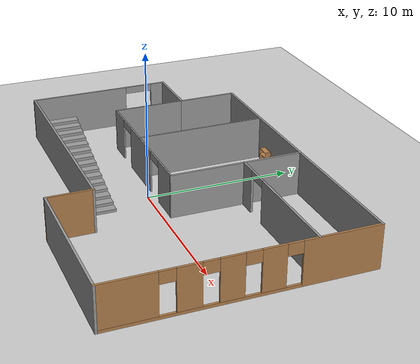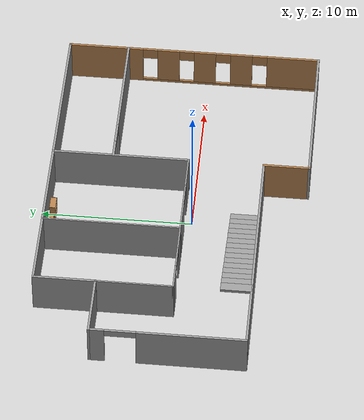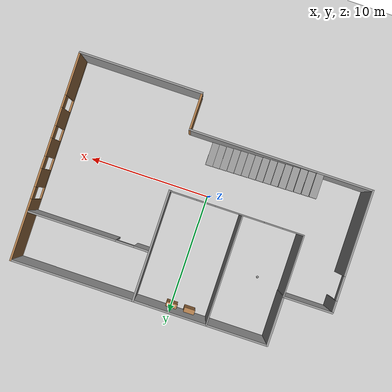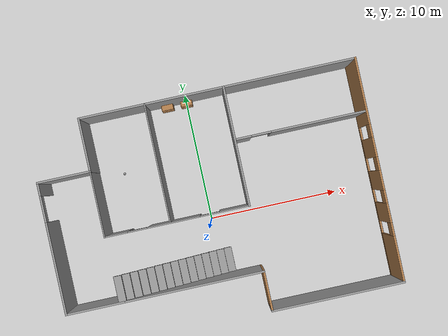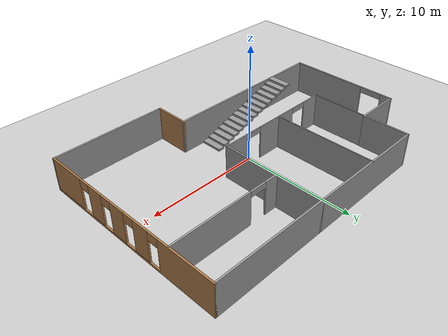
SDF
<sdf version="1.6">
 <world name="default">
  <light name="sun" type="directional">
   <pose>0 0 10 0 -0 0</pose>
   <diffuse>0.8 0.8 0.8 1</diffuse>
   <specular>0.2 0.2 0.2 1</specular>
   <attenuation>
    <range>1000</range>
    <constant>0.9</constant>
    <linear>0.01</linear>
    <quadratic>0.001</quadratic>
   </attenuation>
   <direction>-0.5 0.1 -0.9</direction>
  </light>
  <model name="ground_plane">
   <static>1</static>
   <link name="link">
    <collision name="collision">
     <geometry><plane><normal>0 0 1</normal><size>100 100</size></plane></geometry>
     <surface>
      <contact><collide_bitmask>65535</collide_bitmask></contact>
      <friction><ode><mu>100</mu><mu2>50</mu2></ode></friction>
     </surface>
    </collision>
    <visual name="visual">
     <cast_shadows>0</cast_shadows>
     <geometry><plane><normal>0 0 1</normal><size>100 100</size></plane></geometry>
     <material>
      <script><uri>file://media/materials/scripts/gazebo.material</uri><name>Gazebo/Grey</name></script>
     </material>
    </visual>
   </link>
  </model>
  <gravity>0 0 -9.8</gravity>
  <magnetic_field>6e-06 2.3e-05 -4.2e-05</magnetic_field>
  <atmosphere type="adiabatic"/>
  <physics name="default_physics" default="0" type="ode">
   <max_step_size>0.001</max_step_size>
   <real_time_factor>1</real_time_factor>
   <real_time_update_rate>1000</real_time_update_rate>
  </physics>
  <scene><ambient>0.4 0.4 0.4 1</ambient><background>0.7 0.7 0.7 1</background><shadows>1</shadows></scene>
  <audio><device>default</device></audio>
  <spherical_coordinates>
   <surface_model>EARTH_WGS84</surface_model>
   <latitude_deg>0</latitude_deg>
   <longitude_deg>0</longitude_deg>
   <elevation>0</elevation>
   <heading_deg>0</heading_deg>
  </spherical_coordinates>
  <model name="bookshelf">
   <static>1</static>
   <link name="link">
    <inertial><mass>1</mass></inertial>
    <collision name="back">
     <pose>0 0.005 0.6 0 -0 0</pose>
     <geometry><box><size>0.9 0.01 1.2</size></box></geometry>
    </collision>
    <visual name="visual1">
     <pose>0 0.005 0.6 0 -0 0</pose>
     <geometry><box><size>0.9 0.01 1.2</size></box></geometry>
     <material>
      <script><uri>file://media/materials/scripts/gazebo.material</uri><name>Gazebo/Wood</name></script>
     </material>
    </visual>
    <collision name="left_side">
     <pose>0.45 -0.195 0.6 0 -0 0</pose>
     <geometry><box><size>0.02 0.4 1.2</size></box></geometry>
    </collision>
    <visual name="visual2">
     <pose>0.45 -0.195 0.6 0 -0 0</pose>
     <geometry><box><size>0.02 0.4 1.2</size></box></geometry>
     <material>
      <script><uri>file://media/materials/scripts/gazebo.material</uri><name>Gazebo/Wood</name></script>
     </material>
    </visual>
    <collision name="right_side">
     <pose>-0.45 -0.195 0.6 0 -0 0</pose>
     <geometry><box><size>0.02 0.4 1.2</size></box></geometry>
    </collision>
    <visual name="visual3">
     <pose>-0.45 -0.195 0.6 0 -0 0</pose>
     <geometry><box><size>0.02 0.4 1.2</size></box></geometry>
     <material>
      <script><uri>file://media/materials/scripts/gazebo.material</uri><name>Gazebo/Wood</name></script>
     </material>
    </visual>
    <collision name="bottom">
     <pose>0 -0.195 0.03 0 -0 0</pose>
     <geometry><box><size>0.88 0.4 0.06</size></box></geometry>
    </collision>
    <visual name="visual4">
     <pose>0 -0.195 0.03 0 -0 0</pose>
     <geometry><box><size>0.88 0.4 0.06</size></box></geometry>
     <material>
      <script><uri>file://media/materials/scripts/gazebo.material</uri><name>Gazebo/Wood</name></script>
     </material>
    </visual>
    <collision name="top">
     <pose>0 -0.195 1.19 0 -0 0</pose>
     <geometry><box><size>0.88 0.4 0.02</size></box></geometry>
    </collision>
    <visual name="visual5">
     <pose>0 -0.195 1.19 0 -0 0</pose>
     <geometry><box><size>0.88 0.4 0.02</size></box></geometry>
     <material>
      <script><uri>file://media/materials/scripts/gazebo.material</uri><name>Gazebo/Wood</name></script>
     </material>
    </visual>
    <collision name="low_shelf">
     <pose>0 -0.195 0.43 0 -0 0</pose>
     <geometry><box><size>0.88 0.4 0.02</size></box></geometry>
    </collision>
    <visual name="visual6">
     <pose>0 -0.195 0.43 0 -0 0</pose>
     <geometry><box><size>0.88 0.4 0.02</size></box></geometry>
     <material>
      <script><uri>file://media/materials/scripts/gazebo.material</uri><name>Gazebo/Wood</name></script>
     </material>
    </visual>
    <collision name="high_shelf">
     <pose>0 -0.195 0.8 0 -0 0</pose>
     <geometry><box><size>0.88 0.4 0.02</size></box></geometry>
    </collision>
    <visual name="visual7">
     <pose>0 -0.195 0.8 0 -0 0</pose>
     <geometry><box><size>0.88 0.4 0.02</size></box></geometry>
     <material>
      <script><uri>file://media/materials/scripts/gazebo.material</uri><name>Gazebo/Wood</name></script>
     </material>
    </visual>
   </link>
   <pose>-1.5 9.4 0 0 -0 0</pose>
  </model>
  <model name="my_building">
   <pose>0.5 1 0 0 -0 0</pose>
   <link name="Stairs_0">
    <visual name="Stairs_0_Visual_0">
     <pose>0.2 -4.5 0.1 0 -0 -1.5708</pose>
     <geometry><box><size>2 0.6 0.2</size></box></geometry>
     <material>
      <script><uri>file://media/materials/scripts/gazebo.material</uri><name>Gazebo/Grey</name></script>
      <ambient>1 1 1 1</ambient>
     </material>
     <meta><layer>0</layer></meta>
    </visual>
    <collision name="Stairs_0_Collision_0">
     <geometry><box><size>2 0.6 0.2</size></box></geometry>
     <pose>0.2 -4.5 0.1 0 -0 -1.5708</pose>
    </collision>
    <visual name="Stairs_0_Visual_1">
     <pose>-0.399999 -4.5 0.3 0 -0 -1.5708</pose>
     <geometry><box><size>2 0.6 0.2</size></box></geometry>
     <material>
      <script><uri>file://media/materials/scripts/gazebo.material</uri><name>Gazebo/Grey</name></script>
      <ambient>1 1 1 1</ambient>
     </material>
     <meta><layer>0</layer></meta>
    </visual>
    <collision name="Stairs_0_Collision_1">
     <geometry><box><size>2 0.6 0.2</size></box></geometry>
     <pose>-0.399999 -4.5 0.3 0 -0 -1.5708</pose>
    </collision>
    <visual name="Stairs_0_Visual_2">
     <pose>-1 -4.5 0.5 0 -0 -1.5708</pose>
     <geometry><box><size>2 0.6 0.2</size></box></geometry>
     <material>
      <script><uri>file://media/materials/scripts/gazebo.material</uri><name>Gazebo/Grey</name></script>
      <ambient>1 1 1 1</ambient>
     </material>
     <meta><layer>0</layer></meta>
    </visual>
    <collision name="Stairs_0_Collision_2">
     <geometry><box><size>2 0.6 0.2</size></box></geometry>
     <pose>-1 -4.5 0.5 0 -0 -1.5708</pose>
    </collision>
    <visual name="Stairs_0_Visual_3">
     <pose>-1.6 -4.5 0.7 0 -0 -1.5708</pose>
     <geometry><box><size>2 0.6 0.2</size></box></geometry>
     <material>
      <script><uri>file://media/materials/scripts/gazebo.material</uri><name>Gazebo/Grey</name></script>
      <ambient>1 1 1 1</ambient>
     </material>
     <meta><layer>0</layer></meta>
    </visual>
    <collision name="Stairs_0_Collision_3">
     <geometry><box><size>2 0.6 0.2</size></box></geometry>
     <pose>-1.6 -4.5 0.7 0 -0 -1.5708</pose>
    </collision>
    <visual name="Stairs_0_Visual_4">
     <pose>-2.2 -4.5 0.9 0 -0 -1.5708</pose>
     <geometry><box><size>2 0.6 0.2</size></box></geometry>
     <material>
      <script><uri>file://media/materials/scripts/gazebo.material</uri><name>Gazebo/Grey</name></script>
      <ambient>1 1 1 1</ambient>
     </material>
     <meta><layer>0</layer></meta>
    </visual>
    <collision name="Stairs_0_Collision_4">
     <geometry><box><size>2 0.6 0.2</size></box></geometry>
     <pose>-2.2 -4.5 0.9 0 -0 -1.5708</pose>
    </collision>
    <visual name="Stairs_0_Visual_5">
     <pose>-2.8 -4.5 1.1 0 -0 -1.5708</pose>
     <geometry><box><size>2 0.6 0.2</size></box></geometry>
     <material>
      <script><uri>file://media/materials/scripts/gazebo.material</uri><name>Gazebo/Grey</name></script>
      <ambient>1 1 1 1</ambient>
     </material>
     <meta><layer>0</layer></meta>
    </visual>
    <collision name="Stairs_0_Collision_5">
     <geometry><box><size>2 0.6 0.2</size></box></geometry>
     <pose>-2.8 -4.5 1.1 0 -0 -1.5708</pose>
    </collision>
    <visual name="Stairs_0_Visual_6">
     <pose>-3.4 -4.5 1.3 0 -0 -1.5708</pose>
     <geometry><box><size>2 0.6 0.2</size></box></geometry>
     <material>
      <script><uri>file://media/materials/scripts/gazebo.material</uri><name>Gazebo/Grey</name></script>
      <ambient>1 1 1 1</ambient>
     </material>
     <meta><layer>0</layer></meta>
    </visual>
    <collision name="Stairs_0_Collision_6">
     <geometry><box><size>2 0.6 0.2</size></box></geometry>
     <pose>-3.4 -4.5 1.3 0 -0 -1.5708</pose>
    </collision>
    <visual name="Stairs_0_Visual_7">
     <pose>-4 -4.5 1.5 0 -0 -1.5708</pose>
     <geometry><box><size>2 0.6 0.2</size></box></geometry>
     <material>
      <script><uri>file://media/materials/scripts/gazebo.material</uri><name>Gazebo/Grey</name></script>
      <ambient>1 1 1 1</ambient>
     </material>
     <meta><layer>0</layer></meta>
    </visual>
    <collision name="Stairs_0_Collision_7">
     <geometry><box><size>2 0.6 0.2</size></box></geometry>
     <pose>-4 -4.5 1.5 0 -0 -1.5708</pose>
    </collision>
    <visual name="Stairs_0_Visual_8">
     <pose>-4.6 -4.5 1.7 0 -0 -1.5708</pose>
     <geometry><box><size>2 0.6 0.2</size></box></geometry>
     <material>
      <script><uri>file://media/materials/scripts/gazebo.material</uri><name>Gazebo/Grey</name></script>
      <ambient>1 1 1 1</ambient>
     </material>
     <meta><layer>0</layer></meta>
    </visual>
    <collision name="Stairs_0_Collision_8">
     <geometry><box><size>2 0.6 0.2</size></box></geometry>
     <pose>-4.6 -4.5 1.7 0 -0 -1.5708</pose>
    </collision>
    <visual name="Stairs_0_Visual_9">
     <pose>-5.2 -4.5 1.9 0 -0 -1.5708</pose>
     <geometry><box><size>2 0.6 0.2</size></box></geometry>
     <material>
      <script><uri>file://media/materials/scripts/gazebo.material</uri><name>Gazebo/Grey</name></script>
      <ambient>1 1 1 1</ambient>
     </material>
     <meta><layer>0</layer></meta>
    </visual>
    <collision name="Stairs_0_Collision_9">
     <geometry><box><size>2 0.6 0.2</size></box></geometry>
     <pose>-5.2 -4.5 1.9 0 -0 -1.5708</pose>
    </collision>
    <visual name="Stairs_0_Visual_10">
     <pose>-5.8 -4.5 2.1 0 -0 -1.5708</pose>
     <geometry><box><size>2 0.6 0.2</size></box></geometry>
     <material>
      <script><uri>file://media/materials/scripts/gazebo.material</uri><name>Gazebo/Grey</name></script>
      <ambient>1 1 1 1</ambient>
     </material>
     <meta><layer>0</layer></meta>
    </visual>
    <collision name="Stairs_0_Collision_10">
     <geometry><box><size>2 0.6 0.2</size></box></geometry>
     <pose>-5.8 -4.5 2.1 0 -0 -1.5708</pose>
    </collision>
    <visual name="Stairs_0_Visual_11">
     <pose>-6.4 -4.5 2.3 0 -0 -1.5708</pose>
     <geometry><box><size>2 0.6 0.2</size></box></geometry>
     <material>
      <script><uri>file://media/materials/scripts/gazebo.material</uri><name>Gazebo/Grey</name></script>
      <ambient>1 1 1 1</ambient>
     </material>
     <meta><layer>0</layer></meta>
    </visual>
    <collision name="Stairs_0_Collision_11">
     <geometry><box><size>2 0.6 0.2</size></box></geometry>
     <pose>-6.4 -4.5 2.3 0 -0 -1.5708</pose>
    </collision>
    <visual name="Stairs_0_Visual_12">
     <pose>-7 -4.5 2.5 0 -0 -1.5708</pose>
     <geometry><box><size>2 0.6 0.2</size></box></geometry>
     <material>
      <script><uri>file://media/materials/scripts/gazebo.material</uri><name>Gazebo/Grey</name></script>
      <ambient>1 1 1 1</ambient>
     </material>
     <meta><layer>0</layer></meta>
    </visual>
    <collision name="Stairs_0_Collision_12">
     <geometry><box><size>2 0.6 0.2</size></box></geometry>
     <pose>-7 -4.5 2.5 0 -0 -1.5708</pose>
    </collision>
    <visual name="Stairs_0_Visual_13">
     <pose>-7.6 -4.5 2.7 0 -0 -1.5708</pose>
     <geometry><box><size>2 0.6 0.2</size></box></geometry>
     <material>
      <script><uri>file://media/materials/scripts/gazebo.material</uri><name>Gazebo/Grey</name></script>
      <ambient>1 1 1 1</ambient>
     </material>
     <meta><layer>0</layer></meta>
    </visual>
    <collision name="Stairs_0_Collision_13">
     <geometry><box><size>2 0.6 0.2</size></box></geometry>
     <pose>-7.6 -4.5 2.7 0 -0 -1.5708</pose>
    </collision>
    <visual name="Stairs_0_Visual_14">
     <pose>-8.2 -4.5 2.9 0 -0 -1.5708</pose>
     <geometry><box><size>2 0.6 0.2</size></box></geometry>
     <material>
      <script><uri>file://media/materials/scripts/gazebo.material</uri><name>Gazebo/Grey</name></script>
      <ambient>1 1 1 1</ambient>
     </material>
     <meta><layer>0</layer></meta>
    </visual>
    <collision name="Stairs_0_Collision_14">
     <geometry><box><size>2 0.6 0.2</size></box></geometry>
     <pose>-8.2 -4.5 2.9 0 -0 -1.5708</pose>
    </collision>
   </link>
   <link name="Wall_0">
    <pose>-12.5 -0.5 0 0 -0 -1.5708</pose>
    <visual name="Wall_0_Visual_0">
     <pose>-4.5375 0 1.5 0 -0 0</pose>
     <geometry><box><size>1.075 0.15 3</size></box></geometry>
     <material>
      <script><uri>file://media/materials/scripts/gazebo.material</uri><name>Gazebo/Grey</name></script>
      <ambient>1 1 1 1</ambient>
     </material>
     <meta><layer>0</layer></meta>
    </visual>
    <collision name="Wall_0_Collision_0">
     <geometry><box><size>1.075 0.15 3</size></box></geometry>
     <pose>-4.5375 0 1.5 0 -0 0</pose>
    </collision>
    <visual name="Wall_0_Visual_1">
     <pose>1.5375 0 1.5 0 -0 0</pose>
     <geometry><box><size>7.075 0.15 3</size></box></geometry>
     <material>
      <script><uri>file://media/materials/scripts/gazebo.material</uri><name>Gazebo/Grey</name></script>
      <ambient>1 1 1 1</ambient>
     </material>
     <meta><layer>0</layer></meta>
    </visual>
    <collision name="Wall_0_Collision_1">
     <geometry><box><size>7.075 0.15 3</size></box></geometry>
     <pose>1.5375 0 1.5 0 -0 0</pose>
    </collision>
    <visual name="Wall_0_Visual_2">
     <pose>-3 0 2.75 0 -0 0</pose>
     <geometry><box><size>2 0.15 0.5</size></box></geometry>
     <material>
      <script><uri>file://media/materials/scripts/gazebo.material</uri><name>Gazebo/Grey</name></script>
      <ambient>1 1 1 1</ambient>
     </material>
     <meta><layer>0</layer></meta>
    </visual>
    <collision name="Wall_0_Collision_2">
     <geometry><box><size>2 0.15 0.5</size></box></geometry>
     <pose>-3 0 2.75 0 -0 0</pose>
    </collision>
   </link>
   <link name="Wall_11">
    <pose>12.5 0 0 0 -0 -1.5708</pose>
    <visual name="Wall_11_Visual_0">
     <pose>-6.0375 0 1.5 0 -0 0</pose>
     <geometry><box><size>5.075 0.15 3</size></box></geometry>
     <material>
      <script><uri>file://media/materials/scripts/gazebo.material</uri><name>Gazebo/Wood</name></script>
      <ambient>1 1 1 1</ambient>
     </material>
     <meta><layer>0</layer></meta>
    </visual>
    <collision name="Wall_11_Collision_0">
     <geometry><box><size>5.075 0.15 3</size></box></geometry>
     <pose>-6.0375 0 1.5 0 -0 0</pose>
    </collision>
    <visual name="Wall_11_Visual_1">
     <pose>2.5375 0 0.1 0 -0 0</pose>
     <geometry><box><size>12.075 0.15 0.2</size></box></geometry>
     <material>
      <script><uri>file://media/materials/scripts/gazebo.material</uri><name>Gazebo/Wood</name></script>
      <ambient>1 1 1 1</ambient>
     </material>
     <meta><layer>0</layer></meta>
    </visual>
    <collision name="Wall_11_Collision_1">
     <geometry><box><size>12.075 0.15 0.2</size></box></geometry>
     <pose>2.5375 0 0.1 0 -0 0</pose>
    </collision>
    <visual name="Wall_11_Visual_2">
     <pose>-1.75 0 1.6 0 -0 0</pose>
     <geometry><box><size>1.5 0.15 2.8</size></box></geometry>
     <material>
      <script><uri>file://media/materials/scripts/gazebo.material</uri><name>Gazebo/Wood</name></script>
      <ambient>1 1 1 1</ambient>
     </material>
     <meta><layer>0</layer></meta>
    </visual>
    <collision name="Wall_11_Collision_2">
     <geometry><box><size>1.5 0.15 2.8</size></box></geometry>
     <pose>-1.75 0 1.6 0 -0 0</pose>
    </collision>
    <visual name="Wall_11_Visual_3">
     <pose>0.75 0 1.6 0 -0 0</pose>
     <geometry><box><size>1.5 0.15 2.8</size></box></geometry>
     <material>
      <script><uri>file://media/materials/scripts/gazebo.material</uri><name>Gazebo/Wood</name></script>
      <ambient>1 1 1 1</ambient>
     </material>
     <meta><layer>0</layer></meta>
    </visual>
    <collision name="Wall_11_Collision_3">
     <geometry><box><size>1.5 0.15 2.8</size></box></geometry>
     <pose>0.75 0 1.6 0 -0 0</pose>
    </collision>
    <visual name="Wall_11_Visual_4">
     <pose>3.25 0 1.6 0 -0 0</pose>
     <geometry><box><size>1.5 0.15 2.8</size></box></geometry>
     <material>
      <script><uri>file://media/materials/scripts/gazebo.material</uri><name>Gazebo/Wood</name></script>
      <ambient>1 1 1 1</ambient>
     </material>
     <meta><layer>0</layer></meta>
    </visual>
    <collision name="Wall_11_Collision_4">
     <geometry><box><size>1.5 0.15 2.8</size></box></geometry>
     <pose>3.25 0 1.6 0 -0 0</pose>
    </collision>
    <visual name="Wall_11_Visual_5">
     <pose>6.7875 0 1.6 0 -0 0</pose>
     <geometry><box><size>3.575 0.15 2.8</size></box></geometry>
     <material>
      <script><uri>file://media/materials/scripts/gazebo.material</uri><name>Gazebo/Wood</name></script>
      <ambient>1 1 1 1</ambient>
     </material>
     <meta><layer>0</layer></meta>
    </visual>
    <collision name="Wall_11_Collision_5">
     <geometry><box><size>3.575 0.15 2.8</size></box></geometry>
     <pose>6.7875 0 1.6 0 -0 0</pose>
    </collision>
    <visual name="Wall_11_Visual_6">
     <pose>-3 0 2.6 0 -0 0</pose>
     <geometry><box><size>1 0.15 0.8</size></box></geometry>
     <material>
      <script><uri>file://media/materials/scripts/gazebo.material</uri><name>Gazebo/Wood</name></script>
      <ambient>1 1 1 1</ambient>
     </material>
     <meta><layer>0</layer></meta>
    </visual>
    <collision name="Wall_11_Collision_6">
     <geometry><box><size>1 0.15 0.8</size></box></geometry>
     <pose>-3 0 2.6 0 -0 0</pose>
    </collision>
    <visual name="Wall_11_Visual_7">
     <pose>-0.5 0 2.6 0 -0 0</pose>
     <geometry><box><size>1 0.15 0.8</size></box></geometry>
     <material>
      <script><uri>file://media/materials/scripts/gazebo.material</uri><name>Gazebo/Wood</name></script>
      <ambient>1 1 1 1</ambient>
     </material>
     <meta><layer>0</layer></meta>
    </visual>
    <collision name="Wall_11_Collision_7">
     <geometry><box><size>1 0.15 0.8</size></box></geometry>
     <pose>-0.5 0 2.6 0 -0 0</pose>
    </collision>
    <visual name="Wall_11_Visual_8">
     <pose>2 0 2.6 0 -0 0</pose>
     <geometry><box><size>1 0.15 0.8</size></box></geometry>
     <material>
      <script><uri>file://media/materials/scripts/gazebo.material</uri><name>Gazebo/Wood</name></script>
      <ambient>1 1 1 1</ambient>
     </material>
     <meta><layer>0</layer></meta>
    </visual>
    <collision name="Wall_11_Collision_8">
     <geometry><box><size>1 0.15 0.8</size></box></geometry>
     <pose>2 0 2.6 0 -0 0</pose>
    </collision>
    <visual name="Wall_11_Visual_9">
     <pose>4.5 0 2.6 0 -0 0</pose>
     <geometry><box><size>1 0.15 0.8</size></box></geometry>
     <material>
      <script><uri>file://media/materials/scripts/gazebo.material</uri><name>Gazebo/Wood</name></script>
      <ambient>1 1 1 1</ambient>
     </material>
     <meta><layer>0</layer></meta>
    </visual>
    <collision name="Wall_11_Collision_9">
     <geometry><box><size>1 0.15 0.8</size></box></geometry>
     <pose>4.5 0 2.6 0 -0 0</pose>
    </collision>
   </link>
   <link name="Wall_12">
    <collision name="Wall_12_Collision">
     <geometry><box><size>10.15 0.15 3</size></box></geometry>
     <pose>0 0 1.5 0 -0 0</pose>
    </collision>
    <visual name="Wall_12_Visual">
     <pose>0 0 1.5 0 -0 0</pose>
     <geometry><box><size>10.15 0.15 3</size></box></geometry>
     <material>
      <script><uri>file://media/materials/scripts/gazebo.material</uri><name>Gazebo/Grey</name></script>
      <ambient>1 1 1 1</ambient>
     </material>
     <meta><layer>0</layer></meta>
    </visual>
    <pose>7.5 -8.5 0 0 -0 3.14159</pose>
   </link>
   <link name="Wall_13">
    <collision name="Wall_13_Collision">
     <geometry><box><size>3.15 0.15 3</size></box></geometry>
     <pose>0 0 1.5 0 -0 0</pose>
    </collision>
    <visual name="Wall_13_Visual">
     <pose>0 0 1.5 0 -0 0</pose>
     <geometry><box><size>3.15 0.15 3</size></box></geometry>
     <material>
      <script><uri>file://media/materials/scripts/gazebo.material</uri><name>Gazebo/Wood</name></script>
      <ambient>1 1 1 1</ambient>
     </material>
     <meta><layer>0</layer></meta>
    </visual>
    <pose>2.5 -7 0 0 -0 1.5708</pose>
   </link>
   <link name="Wall_14">
    <collision name="Wall_14_Collision">
     <geometry><box><size>15.15 0.15 3</size></box></geometry>
     <pose>0 0 1.5 0 -0 0</pose>
    </collision>
    <visual name="Wall_14_Visual">
     <pose>0 0 1.5 0 -0 0</pose>
     <geometry><box><size>15.15 0.15 3</size></box></geometry>
     <material>
      <script><uri>file://media/materials/scripts/gazebo.material</uri><name>Gazebo/Grey</name></script>
      <ambient>1 1 1 1</ambient>
     </material>
     <meta><layer>0</layer></meta>
    </visual>
    <pose>-5 -5.5 0 0 -0 3.14159</pose>
   </link>
   <link name="Wall_16">
    <collision name="Wall_16_Collision">
     <geometry><box><size>5.1 0.1 3</size></box></geometry>
     <pose>0 0 1.5 0 -0 0</pose>
    </collision>
    <visual name="Wall_16_Visual">
     <pose>0 0 1.5 0 -0 0</pose>
     <geometry><box><size>5.1 0.1 3</size></box></geometry>
     <material>
      <script><uri>file://media/materials/scripts/gazebo.material</uri><name>Gazebo/Grey</name></script>
      <ambient>1 1 1 1</ambient>
     </material>
     <meta><layer>0</layer></meta>
    </visual>
    <pose>-8.5 2 0 0 -0 -1.5708</pose>
   </link>
   <link name="Wall_18">
    <pose>-3 -0.5 0 0 -0 0</pose>
    <visual name="Wall_18_Visual_0">
     <pose>-4.65 0 1.5 0 -0 0</pose>
     <geometry><box><size>1.8 0.1 3</size></box></geometry>
     <material>
      <script><uri>file://media/materials/scripts/gazebo.material</uri><name>Gazebo/Grey</name></script>
      <ambient>1 1 1 1</ambient>
     </material>
     <meta><layer>0</layer></meta>
    </visual>
    <collision name="Wall_18_Collision_0">
     <geometry><box><size>1.8 0.1 3</size></box></geometry>
     <pose>-4.65 0 1.5 0 -0 0</pose>
    </collision>
    <visual name="Wall_18_Visual_1">
     <pose>-0.25 0 1.5 0 -0 0</pose>
     <geometry><box><size>4 0.1 3</size></box></geometry>
     <material>
      <script><uri>file://media/materials/scripts/gazebo.material</uri><name>Gazebo/Grey</name></script>
      <ambient>1 1 1 1</ambient>
     </material>
     <meta><layer>0</layer></meta>
    </visual>
    <collision name="Wall_18_Collision_1">
     <geometry><box><size>4 0.1 3</size></box></geometry>
     <pose>-0.25 0 1.5 0 -0 0</pose>
    </collision>
    <visual name="Wall_18_Visual_2">
     <pose>4.4 0 1.5 0 -0 0</pose>
     <geometry><box><size>2.3 0.1 3</size></box></geometry>
     <material>
      <script><uri>file://media/materials/scripts/gazebo.material</uri><name>Gazebo/Grey</name></script>
      <ambient>1 1 1 1</ambient>
     </material>
     <meta><layer>0</layer></meta>
    </visual>
    <collision name="Wall_18_Collision_2">
     <geometry><box><size>2.3 0.1 3</size></box></geometry>
     <pose>4.4 0 1.5 0 -0 0</pose>
    </collision>
    <visual name="Wall_18_Visual_3">
     <pose>-3 0 2.75 0 -0 0</pose>
     <geometry><box><size>1.5 0.1 0.5</size></box></geometry>
     <material>
      <script><uri>file://media/materials/scripts/gazebo.material</uri><name>Gazebo/Grey</name></script>
      <ambient>1 1 1 1</ambient>
     </material>
     <meta><layer>0</layer></meta>
    </visual>
    <collision name="Wall_18_Collision_3">
     <geometry><box><size>1.5 0.1 0.5</size></box></geometry>
     <pose>-3 0 2.75 0 -0 0</pose>
    </collision>
    <visual name="Wall_18_Visual_4">
     <pose>2.5 0 2.75 0 -0 0</pose>
     <geometry><box><size>1.5 0.1 0.5</size></box></geometry>
     <material>
      <script><uri>file://media/materials/scripts/gazebo.material</uri><name>Gazebo/Grey</name></script>
      <ambient>1 1 1 1</ambient>
     </material>
     <meta><layer>0</layer></meta>
    </visual>
    <collision name="Wall_18_Collision_4">
     <geometry><box><size>1.5 0.1 0.5</size></box></geometry>
     <pose>2.5 0 2.75 0 -0 0</pose>
    </collision>
   </link>
   <link name="Wall_20">
    <collision name="Wall_20_Collision">
     <geometry><box><size>9.15 0.15 3</size></box></geometry>
     <pose>0 0 1.5 0 -0 0</pose>
    </collision>
    <visual name="Wall_20_Visual">
     <pose>0 0 1.5 0 -0 0</pose>
     <geometry><box><size>9.15 0.15 3</size></box></geometry>
     <material>
      <script><uri>file://media/materials/scripts/gazebo.material</uri><name>Gazebo/Grey</name></script>
      <ambient>1 1 1 1</ambient>
     </material>
     <meta><layer>0</layer></meta>
    </visual>
    <pose>2.5 4 0 0 -0 1.5708</pose>
   </link>
   <link name="Wall_22">
    <collision name="Wall_22_Collision">
     <geometry><box><size>9.1 0.1 3</size></box></geometry>
     <pose>0 0 1.5 0 -0 0</pose>
    </collision>
    <visual name="Wall_22_Visual">
     <pose>0 0 1.5 0 -0 0</pose>
     <geometry><box><size>9.1 0.1 3</size></box></geometry>
     <material>
      <script><uri>file://media/materials/scripts/gazebo.material</uri><name>Gazebo/Grey</name></script>
      <ambient>1 1 1 1</ambient>
     </material>
     <meta><layer>0</layer></meta>
    </visual>
    <pose>-3.5 4 0 0 -0 1.5708</pose>
   </link>
   <link name="Wall_24">
    <pose>7.5 4.5 0 0 -0 0</pose>
    <visual name="Wall_24_Visual_0">
     <pose>-4.4125 0 1.5 0 -0 0</pose>
     <geometry><box><size>1.325 0.15 3</size></box></geometry>
     <material>
      <script><uri>file://media/materials/scripts/gazebo.material</uri><name>Gazebo/Grey</name></script>
      <ambient>1 1 1 1</ambient>
     </material>
     <meta><layer>0</layer></meta>
    </visual>
    <collision name="Wall_24_Collision_0">
     <geometry><box><size>1.325 0.15 3</size></box></geometry>
     <pose>-4.4125 0 1.5 0 -0 0</pose>
    </collision>
    <visual name="Wall_24_Visual_1">
     <pose>1.4125 0 1.5 0 -0 0</pose>
     <geometry><box><size>7.325 0.15 3</size></box></geometry>
     <material>
      <script><uri>file://media/materials/scripts/gazebo.material</uri><name>Gazebo/Grey</name></script>
      <ambient>1 1 1 1</ambient>
     </material>
     <meta><layer>0</layer></meta>
    </visual>
    <collision name="Wall_24_Collision_1">
     <geometry><box><size>7.325 0.15 3</size></box></geometry>
     <pose>1.4125 0 1.5 0 -0 0</pose>
    </collision>
    <visual name="Wall_24_Visual_2">
     <pose>-3 0 2.75 0 -0 0</pose>
     <geometry><box><size>1.5 0.15 0.5</size></box></geometry>
     <material>
      <script><uri>file://media/materials/scripts/gazebo.material</uri><name>Gazebo/Grey</name></script>
      <ambient>1 1 1 1</ambient>
     </material>
     <meta><layer>0</layer></meta>
    </visual>
    <collision name="Wall_24_Collision_2">
     <geometry><box><size>1.5 0.15 0.5</size></box></geometry>
     <pose>-3 0 2.75 0 -0 0</pose>
    </collision>
   </link>
   <link name="Wall_7">
    <collision name="Wall_7_Collision">
     <geometry><box><size>4.15 0.15 3</size></box></geometry>
     <pose>0 0 1.5 0 -0 0</pose>
    </collision>
    <visual name="Wall_7_Visual">
     <pose>0 0 1.5 0 -0 0</pose>
     <geometry><box><size>4.15 0.15 3</size></box></geometry>
     <material>
      <script><uri>file://media/materials/scripts/gazebo.material</uri><name>Gazebo/Grey</name></script>
      <ambient>1 1 1 1</ambient>
     </material>
     <meta><layer>0</layer></meta>
    </visual>
    <pose>-10.5 4.5 0 0 -0 0</pose>
   </link>
   <link name="Wall_8">
    <collision name="Wall_8_Collision">
     <geometry><box><size>4.15 0.15 3</size></box></geometry>
     <pose>0 0 1.5 0 -0 0</pose>
    </collision>
    <visual name="Wall_8_Visual">
     <pose>0 0 1.5 0 -0 0</pose>
     <geometry><box><size>4.15 0.15 3</size></box></geometry>
     <material>
      <script><uri>file://media/materials/scripts/gazebo.material</uri><name>Gazebo/Grey</name></script>
      <ambient>1 1 1 1</ambient>
     </material>
     <meta><layer>0</layer></meta>
    </visual>
    <pose>-8.5 6.5 0 0 -0 1.5708</pose>
   </link>
   <link name="Wall_9">
    <collision name="Wall_9_Collision">
     <geometry><box><size>21.15 0.15 3</size></box></geometry>
     <pose>0 0 1.5 0 -0 0</pose>
    </collision>
    <visual name="Wall_9_Visual">
     <pose>0 0 1.5 0 -0 0</pose>
     <geometry><box><size>21.15 0.15 3</size></box></geometry>
     <material>
      <script><uri>file://media/materials/scripts/gazebo.material</uri><name>Gazebo/Grey</name></script>
      <ambient>1 1 1 1</ambient>
     </material>
     <meta><layer>0</layer></meta>
    </visual>
    <pose>2 8.5 0 0 -0 0</pose>
   </link>
   <static>1</static>
  </model>
  <model name="bookshelf_0">
   <static>1</static>
   <link name="link">
    <inertial><mass>1</mass></inertial>
    <collision name="back">
     <pose>0 0.005 0.6 0 -0 0</pose>
     <geometry><box><size>0.9 0.01 1.2</size></box></geometry>
    </collision>
    <visual name="visual1">
     <pose>0 0.005 0.6 0 -0 0</pose>
     <geometry><box><size>0.9 0.01 1.2</size></box></geometry>
     <material>
      <script><uri>file://media/materials/scripts/gazebo.material</uri><name>Gazebo/Wood</name></script>
     </material>
    </visual>
    <collision name="left_side">
     <pose>0.45 -0.195 0.6 0 -0 0</pose>
     <geometry><box><size>0.02 0.4 1.2</size></box></geometry>
    </collision>
    <visual name="visual2">
     <pose>0.45 -0.195 0.6 0 -0 0</pose>
     <geometry><box><size>0.02 0.4 1.2</size></box></geometry>
     <material>
      <script><uri>file://media/materials/scripts/gazebo.material</uri><name>Gazebo/Wood</name></script>
     </material>
    </visual>
    <collision name="right_side">
     <pose>-0.45 -0.195 0.6 0 -0 0</pose>
     <geometry><box><size>0.02 0.4 1.2</size></box></geometry>
    </collision>
    <visual name="visual3">
     <pose>-0.45 -0.195 0.6 0 -0 0</pose>
     <geometry><box><size>0.02 0.4 1.2</size></box></geometry>
     <material>
      <script><uri>file://media/materials/scripts/gazebo.material</uri><name>Gazebo/Wood</name></script>
     </material>
    </visual>
    <collision name="bottom">
     <pose>0 -0.195 0.03 0 -0 0</pose>
     <geometry><box><size>0.88 0.4 0.06</size></box></geometry>
    </collision>
    <visual name="visual4">
     <pose>0 -0.195 0.03 0 -0 0</pose>
     <geometry><box><size>0.88 0.4 0.06</size></box></geometry>
     <material>
      <script><uri>file://media/materials/scripts/gazebo.material</uri><name>Gazebo/Wood</name></script>
     </material>
    </visual>
    <collision name="top">
     <pose>0 -0.195 1.19 0 -0 0</pose>
     <geometry><box><size>0.88 0.4 0.02</size></box></geometry>
    </collision>
    <visual name="visual5">
     <pose>0 -0.195 1.19 0 -0 0</pose>
     <geometry><box><size>0.88 0.4 0.02</size></box></geometry>
     <material>
      <script><uri>file://media/materials/scripts/gazebo.material</uri><name>Gazebo/Wood</name></script>
     </material>
    </visual>
    <collision name="low_shelf">
     <pose>0 -0.195 0.43 0 -0 0</pose>
     <geometry><box><size>0.88 0.4 0.02</size></box></geometry>
    </collision>
    <visual name="visual6">
     <pose>0 -0.195 0.43 0 -0 0</pose>
     <geometry><box><size>0.88 0.4 0.02</size></box></geometry>
     <material>
      <script><uri>file://media/materials/scripts/gazebo.material</uri><name>Gazebo/Wood</name></script>
     </material>
    </visual>
    <collision name="high_shelf">
     <pose>0 -0.195 0.8 0 -0 0</pose>
     <geometry><box><size>0.88 0.4 0.02</size></box></geometry>
    </collision>
    <visual name="visual7">
     <pose>0 -0.195 0.8 0 -0 0</pose>
     <geometry><box><size>0.88 0.4 0.02</size></box></geometry>
     <material>
      <script><uri>file://media/materials/scripts/gazebo.material</uri><name>Gazebo/Wood</name></script>
     </material>
    </visual>
   </link>
   <pose>0 9.4 0 0 -0 0</pose>
  </model>
  <model name="my_ball">
   <link name="link_0">
    <inertial>
     <mass>1</mass>
     <inertia><ixx>0.1</ixx><ixy>0</ixy><ixz>0</ixz><iyy>0.1</iyy><iyz>0</iyz><izz>0.1</izz></inertia>
    </inertial>
    <visual name="visual">
     <geometry><sphere><radius>0.1</radius></sphere></geometry>
     <material>
      <lighting>1</lighting>
      <script><uri>file://media/materials/scripts/gazebo.material</uri><name>Gazebo/Grey</name></script>
      <shader type="vertex"><normal_map>__default__</normal_map></shader>
      <ambient>1 1 1 1</ambient>
      <diffuse>1 1 1 1</diffuse>
      <specular>1 1 1 1</specular>
      <emissive>1 1 1 1</emissive>
     </material>
    </visual>
    <collision name="collision">
     <geometry><sphere><radius>0.1</radius></sphere></geometry>
     <surface>
      <friction>
       <ode><mu>1</mu><mu2>1</mu2><fdir1>0 0 0</fdir1><slip1>0</slip1><slip2>0</slip2></ode>
       <torsional>
        <coefficient>1</coefficient>
        <patch_radius>0</patch_radius>
        <surface_radius>0</surface_radius>
        <use_patch_radius>1</use_patch_radius>
        <ode><slip>0</slip></ode>
       </torsional>
      </friction>
      <bounce><restitution_coefficient>0</restitution_coefficient><threshold>1e+06</threshold></bounce>
      <contact>
       <collide_without_contact>0</collide_without_contact>
       <collide_without_contact_bitmask>1</collide_without_contact_bitmask>
       <collide_bitmask>1</collide_bitmask>
       <ode>
        <soft_cfm>0</soft_cfm>
        <soft_erp>0.2</soft_erp>
        <kp>1e+13</kp>
        <kd>1</kd>
        <max_vel>0.01</max_vel>
        <min_depth>0</min_depth>
       </ode>
       <bullet>
        <split_impulse>1</split_impulse>
        <split_impulse_penetration_threshold>-0.01</split_impulse_penetration_threshold>
        <soft_cfm>0</soft_cfm>
        <soft_erp>0.2</soft_erp>
        <kp>1e+13</kp>
        <kd>1</kd>
       </bullet>
      </contact>
     </surface>
    </collision>
   </link>
   <static>0</static>
   <pose>-6.01746 4.95524 0.1 0 -0 0</pose>
  </model>
 </world>
</sdf>
